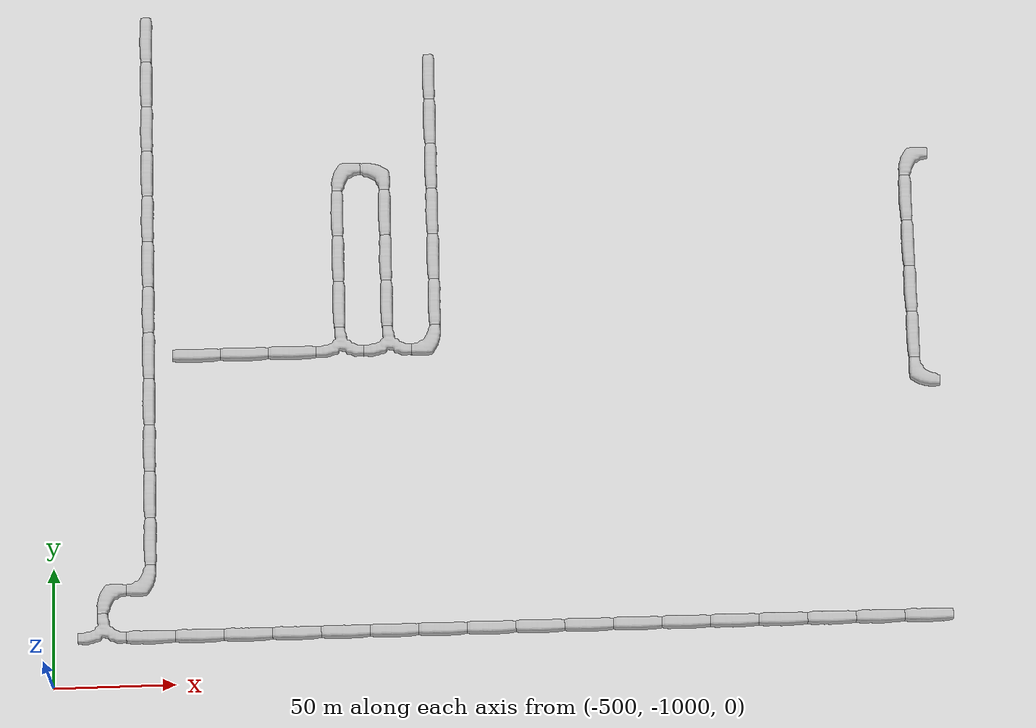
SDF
<sdf version="1.6">
 <world name="cave_32000_0">
  <include>
   <static>true</static>
   <name>cave_-7_-39</name>
   <pose>-140 -780 0 0 0 -1.5707963267948966</pose>
   <uri>model://cave_L_20m</uri>
  </include>
  <include>
   <static>true</static>
   <name>cave_-7_-40</name>
   <pose>-140 -800 0 0 0 0.0</pose>
   <uri>model://cave_straight_20m</uri>
  </include>
  <include>
   <static>true</static>
   <name>cave_-7_-41</name>
   <pose>-140 -820 0 0 0 0.0</pose>
   <uri>model://cave_straight_20m</uri>
  </include>
  <include>
   <static>true</static>
   <name>cave_-7_-42</name>
   <pose>-140 -840 0 0 0 0.0</pose>
   <uri>model://cave_straight_20m</uri>
  </include>
  <include>
   <static>true</static>
   <name>cave_-7_-43</name>
   <pose>-140 -860 0 0 0 0.0</pose>
   <uri>model://cave_straight_20m</uri>
  </include>
  <include>
   <static>true</static>
   <name>cave_-7_-44</name>
   <pose>-140 -880 0 0 0 0.0</pose>
   <uri>model://cave_L_20m</uri>
  </include>
  <include>
   <static>true</static>
   <name>cave_-7_-49</name>
   <pose>-140 -980 0 0 0 1.5707963267948966</pose>
   <uri>model://cave_straight_20m</uri>
  </include>
  <include>
   <static>true</static>
   <name>cave_-8_-49</name>
   <pose>-160 -980 0 0 0 1.5707963267948966</pose>
   <uri>model://cave_straight_20m</uri>
  </include>
  <include>
   <static>true</static>
   <name>cave_-9_-49</name>
   <pose>-180 -980 0 0 0 1.5707963267948966</pose>
   <uri>model://cave_straight_20m</uri>
  </include>
  <include>
   <static>true</static>
   <name>cave_-10_-49</name>
   <pose>-200 -980 0 0 0 1.5707963267948966</pose>
   <uri>model://cave_straight_20m</uri>
  </include>
  <include>
   <static>true</static>
   <name>cave_-11_-49</name>
   <pose>-220 -980 0 0 0 1.5707963267948966</pose>
   <uri>model://cave_straight_20m</uri>
  </include>
  <include>
   <static>true</static>
   <name>cave_-12_-49</name>
   <pose>-240 -980 0 0 0 1.5707963267948966</pose>
   <uri>model://cave_straight_20m</uri>
  </include>
  <include>
   <static>true</static>
   <name>cave_-13_-49</name>
   <pose>-260 -980 0 0 0 1.5707963267948966</pose>
   <uri>model://cave_straight_20m</uri>
  </include>
  <include>
   <static>true</static>
   <name>cave_-14_-49</name>
   <pose>-280 -980 0 0 0 1.5707963267948966</pose>
   <uri>model://cave_straight_20m</uri>
  </include>
  <include>
   <static>true</static>
   <name>cave_-15_-49</name>
   <pose>-300 -980 0 0 0 1.5707963267948966</pose>
   <uri>model://cave_straight_20m</uri>
  </include>
  <include>
   <static>true</static>
   <name>cave_-16_-49</name>
   <pose>-320 -980 0 0 0 1.5707963267948966</pose>
   <uri>model://cave_straight_20m</uri>
  </include>
  <include>
   <static>true</static>
   <name>cave_-17_-49</name>
   <pose>-340 -980 0 0 0 1.5707963267948966</pose>
   <uri>model://cave_straight_20m</uri>
  </include>
  <include>
   <static>true</static>
   <name>cave_-18_-49</name>
   <pose>-360 -980 0 0 0 1.5707963267948966</pose>
   <uri>model://cave_straight_20m</uri>
  </include>
  <include>
   <static>true</static>
   <name>cave_-19_-49</name>
   <pose>-380 -980 0 0 0 1.5707963267948966</pose>
   <uri>model://cave_straight_20m</uri>
  </include>
  <include>
   <static>true</static>
   <name>cave_-20_-49</name>
   <pose>-400 -980 0 0 0 1.5707963267948966</pose>
   <uri>model://cave_straight_20m</uri>
  </include>
  <include>
   <static>true</static>
   <name>cave_-21_-49</name>
   <pose>-420 -980 0 0 0 1.5707963267948966</pose>
   <uri>model://cave_straight_20m</uri>
  </include>
  <include>
   <static>true</static>
   <name>cave_-22_-49</name>
   <pose>-440 -980 0 0 0 1.5707963267948966</pose>
   <uri>model://cave_straight_20m</uri>
  </include>
  <include>
   <static>true</static>
   <name>cave_-23_-49</name>
   <pose>-460 -980 0 0 0 1.5707963267948966</pose>
   <uri>model://cave_straight_20m</uri>
  </include>
  <include>
   <static>true</static>
   <name>cave_-24_-49</name>
   <pose>-480 -980 0 0 0 0.0</pose>
   <uri>model://cave_3way_20m</uri>
  </include>
  <include>
   <static>true</static>
   <name>cave_-24_-48</name>
   <pose>-480 -960 0 0 0 -1.5707963267948966</pose>
   <uri>model://cave_L_20m</uri>
  </include>
  <include>
   <static>true</static>
   <name>cave_-23_-48</name>
   <pose>-460 -960 0 0 0 1.5707963267948966</pose>
   <uri>model://cave_L_20m</uri>
  </include>
  <include>
   <static>true</static>
   <name>cave_-23_-47</name>
   <pose>-460 -940 0 0 0 0.0</pose>
   <uri>model://cave_straight_20m</uri>
  </include>
  <include>
   <static>true</static>
   <name>cave_-23_-46</name>
   <pose>-460 -920 0 0 0 0.0</pose>
   <uri>model://cave_straight_20m</uri>
  </include>
  <include>
   <static>true</static>
   <name>cave_-23_-45</name>
   <pose>-460 -900 0 0 0 0.0</pose>
   <uri>model://cave_straight_20m</uri>
  </include>
  <include>
   <static>true</static>
   <name>cave_-23_-44</name>
   <pose>-460 -880 0 0 0 0.0</pose>
   <uri>model://cave_straight_20m</uri>
  </include>
  <include>
   <static>true</static>
   <name>cave_-23_-43</name>
   <pose>-460 -860 0 0 0 0.0</pose>
   <uri>model://cave_straight_20m</uri>
  </include>
  <include>
   <static>true</static>
   <name>cave_-23_-42</name>
   <pose>-460 -840 0 0 0 0.0</pose>
   <uri>model://cave_straight_20m</uri>
  </include>
  <include>
   <static>true</static>
   <name>cave_-23_-41</name>
   <pose>-460 -820 0 0 0 0.0</pose>
   <uri>model://cave_straight_20m</uri>
  </include>
  <include>
   <static>true</static>
   <name>cave_-23_-40</name>
   <pose>-460 -800 0 0 0 0.0</pose>
   <uri>model://cave_straight_20m</uri>
  </include>
  <include>
   <static>true</static>
   <name>cave_-23_-39</name>
   <pose>-460 -780 0 0 0 0.0</pose>
   <uri>model://cave_straight_20m</uri>
  </include>
  <include>
   <static>true</static>
   <name>cave_-23_-38</name>
   <pose>-460 -760 0 0 0 0.0</pose>
   <uri>model://cave_straight_20m</uri>
  </include>
  <include>
   <static>true</static>
   <name>cave_-23_-37</name>
   <pose>-460 -740 0 0 0 0.0</pose>
   <uri>model://cave_straight_20m</uri>
  </include>
  <include>
   <static>true</static>
   <name>cave_-23_-36</name>
   <pose>-460 -720 0 0 0 0.0</pose>
   <uri>model://cave_straight_20m</uri>
  </include>
  <include>
   <static>true</static>
   <name>cave_-17_-37</name>
   <pose>-340 -740 0 0 0 0.0</pose>
   <uri>model://cave_straight_20m</uri>
  </include>
  <include>
   <static>true</static>
   <name>cave_-17_-38</name>
   <pose>-340 -760 0 0 0 0.0</pose>
   <uri>model://cave_straight_20m</uri>
  </include>
  <include>
   <static>true</static>
   <name>cave_-17_-39</name>
   <pose>-340 -780 0 0 0 0.0</pose>
   <uri>model://cave_straight_20m</uri>
  </include>
  <include>
   <static>true</static>
   <name>cave_-17_-40</name>
   <pose>-340 -800 0 0 0 0.0</pose>
   <uri>model://cave_straight_20m</uri>
  </include>
  <include>
   <static>true</static>
   <name>cave_-17_-41</name>
   <pose>-340 -820 0 0 0 0.0</pose>
   <uri>model://cave_straight_20m</uri>
  </include>
  <include>
   <static>true</static>
   <name>cave_-17_-42</name>
   <pose>-340 -840 0 0 0 0.0</pose>
   <uri>model://cave_straight_20m</uri>
  </include>
  <include>
   <static>true</static>
   <name>cave_-17_-43</name>
   <pose>-340 -860 0 0 0 1.5707963267948966</pose>
   <uri>model://cave_L_20m</uri>
  </include>
  <include>
   <static>true</static>
   <name>cave_-18_-43</name>
   <pose>-360 -860 0 0 0 0.0</pose>
   <uri>model://cave_3way_20m</uri>
  </include>
  <include>
   <static>true</static>
   <name>cave_-19_-43</name>
   <pose>-380 -860 0 0 0 0.0</pose>
   <uri>model://cave_3way_20m</uri>
  </include>
  <include>
   <static>true</static>
   <name>cave_-20_-43</name>
   <pose>-400 -860 0 0 0 1.5707963267948966</pose>
   <uri>model://cave_straight_20m</uri>
  </include>
  <include>
   <static>true</static>
   <name>cave_-21_-43</name>
   <pose>-420 -860 0 0 0 1.5707963267948966</pose>
   <uri>model://cave_straight_20m</uri>
  </include>
  <include>
   <static>true</static>
   <name>cave_-22_-43</name>
   <pose>-440 -860 0 0 0 1.5707963267948966</pose>
   <uri>model://cave_straight_20m</uri>
  </include>
  <include>
   <static>true</static>
   <name>cave_-19_-42</name>
   <pose>-380 -840 0 0 0 0.0</pose>
   <uri>model://cave_straight_20m</uri>
  </include>
  <include>
   <static>true</static>
   <name>cave_-19_-41</name>
   <pose>-380 -820 0 0 0 0.0</pose>
   <uri>model://cave_straight_20m</uri>
  </include>
  <include>
   <static>true</static>
   <name>cave_-19_-40</name>
   <pose>-380 -800 0 0 0 0.0</pose>
   <uri>model://cave_straight_20m</uri>
  </include>
  <include>
   <static>true</static>
   <name>cave_-19_-39</name>
   <pose>-380 -780 0 0 0 -1.5707963267948966</pose>
   <uri>model://cave_L_20m</uri>
  </include>
  <include>
   <static>true</static>
   <name>cave_-18_-42</name>
   <pose>-360 -840 0 0 0 0.0</pose>
   <uri>model://cave_straight_20m</uri>
  </include>
  <include>
   <static>true</static>
   <name>cave_-18_-41</name>
   <pose>-360 -820 0 0 0 0.0</pose>
   <uri>model://cave_straight_20m</uri>
  </include>
  <include>
   <static>true</static>
   <name>cave_-18_-40</name>
   <pose>-360 -800 0 0 0 0.0</pose>
   <uri>model://cave_straight_20m</uri>
  </include>
  <include>
   <static>true</static>
   <name>cave_-18_-39</name>
   <pose>-360 -780 0 0 0 3.141592653589793</pose>
   <uri>model://cave_L_20m</uri>
  </include>
 </world>
</sdf>
